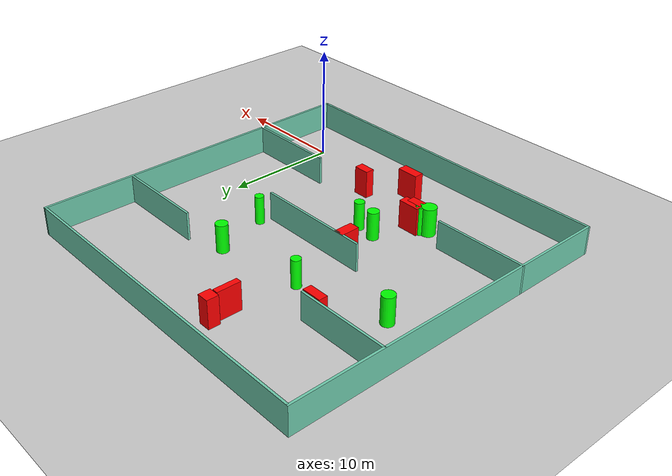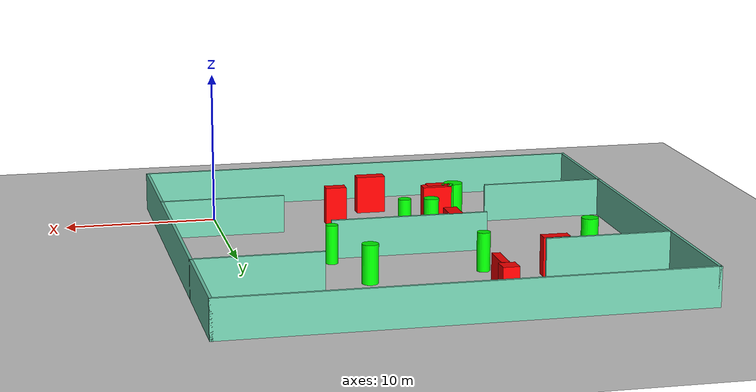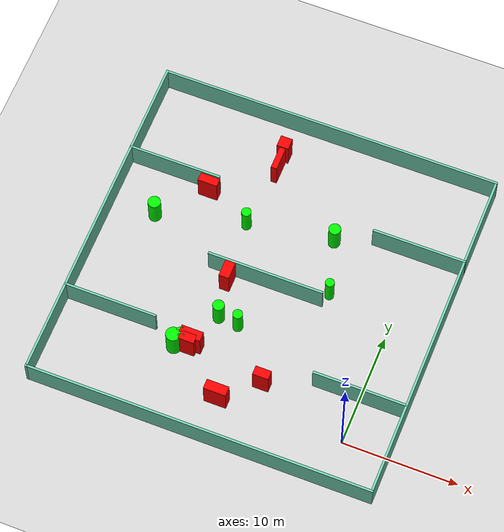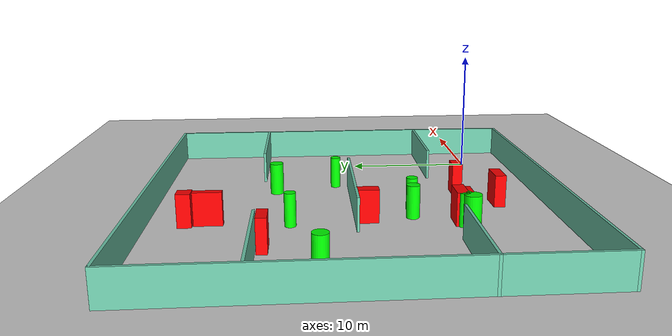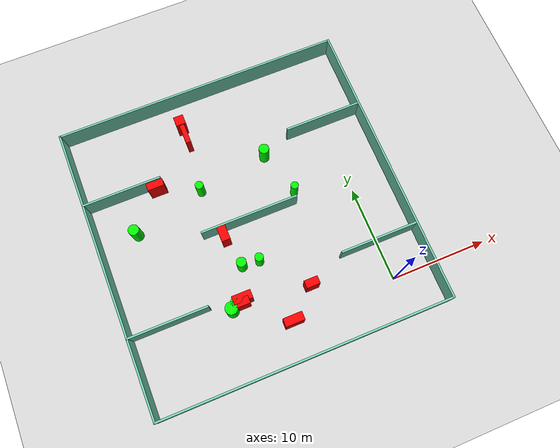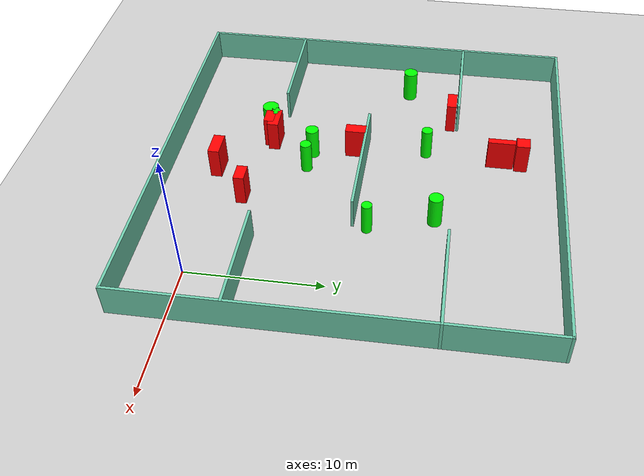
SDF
<sdf version="1.7">
 <world name="default">
  <light name="sun" type="directional">
   <pose>0 0 10 0 -0 0</pose>
   <diffuse>0.8 0.8 0.8 1</diffuse>
   <specular>0.2 0.2 0.2 1</specular>
   <attenuation>
    <range>1000</range>
    <constant>0.9</constant>
    <linear>0.01</linear>
    <quadratic>0.001</quadratic>
   </attenuation>
   <direction>-0.5 0.1 -0.9</direction>
   <spot><inner_angle>0</inner_angle><outer_angle>0</outer_angle><falloff>0</falloff></spot>
  </light>
  <model name="ground_plane">
   <static>1</static>
   <link name="link">
    <collision name="collision">
     <geometry><plane><normal>0 0 1</normal><size>100 100</size></plane></geometry>
     <surface>
      <contact><collide_bitmask>65535</collide_bitmask></contact>
      <friction><ode><mu>100</mu><mu2>50</mu2></ode></friction>
     </surface>
    </collision>
    <visual name="visual">
     <cast_shadows>0</cast_shadows>
     <geometry><plane><normal>0 0 1</normal><size>100 100</size></plane></geometry>
     <material>
      <script><uri>file://media/materials/scripts/gazebo.material</uri><name>Gazebo/Grey</name></script>
     </material>
    </visual>
   </link>
  </model>
  <gravity>0 0 -9.8</gravity>
  <magnetic_field>6e-06 2.3e-05 -4.2e-05</magnetic_field>
  <atmosphere type="adiabatic"/>
  <physics type="ode">
   <max_step_size>0.001</max_step_size>
   <real_time_factor>1</real_time_factor>
   <real_time_update_rate>1000</real_time_update_rate>
  </physics>
  <scene><ambient>0.4 0.4 0.4 1</ambient><background>0.7 0.7 0.7 1</background><shadows>1</shadows></scene>
  <spherical_coordinates>
   <surface_model>EARTH_WGS84</surface_model>
   <latitude_deg>0</latitude_deg>
   <longitude_deg>0</longitude_deg>
   <elevation>0</elevation>
   <heading_deg>0</heading_deg>
  </spherical_coordinates>
  <model name="my_base_walls">
   <link name="Wall_10">
    <collision name="Wall_10_Collision">
     <geometry><box><size>8.2 0.2 2.5</size></box></geometry>
     <pose>0 0 1.25 0 -0 0</pose>
    </collision>
    <visual name="Wall_10_Visual">
     <pose>0 0 1.25 0 -0 0</pose>
     <geometry><box><size>8.2 0.2 2.5</size></box></geometry>
     <material>
      <script><uri>file://media/materials/scripts/gazebo.material</uri><name>Gazebo/Grey</name></script>
      <ambient>0.435294 0.796078 0.67451 1</ambient>
     </material>
     <meta><layer>0</layer></meta>
    </visual>
    <pose>-11 -7 0 0 -0 0</pose>
   </link>
   <link name="Wall_12">
    <collision name="Wall_12_Collision">
     <geometry><box><size>8.2 0.2 2.5</size></box></geometry>
     <pose>0 0 1.25 0 -0 0</pose>
    </collision>
    <visual name="Wall_12_Visual">
     <pose>0 0 1.25 0 -0 0</pose>
     <geometry><box><size>8.2 0.2 2.5</size></box></geometry>
     <material>
      <script><uri>file://media/materials/scripts/gazebo.material</uri><name>Gazebo/Grey</name></script>
      <ambient>0.435294 0.796078 0.67451 1</ambient>
     </material>
     <meta><layer>0</layer></meta>
    </visual>
    <pose>-11 7 0 0 -0 0</pose>
   </link>
   <link name="Wall_14">
    <collision name="Wall_14_Collision">
     <geometry><box><size>8.2 0.2 2.5</size></box></geometry>
     <pose>0 0 1.25 0 -0 0</pose>
    </collision>
    <visual name="Wall_14_Visual">
     <pose>0 0 1.25 0 -0 0</pose>
     <geometry><box><size>8.2 0.2 2.5</size></box></geometry>
     <material>
      <script><uri>file://media/materials/scripts/gazebo.material</uri><name>Gazebo/Grey</name></script>
      <ambient>0.435294 0.796078 0.67451 1</ambient>
     </material>
     <meta><layer>0</layer></meta>
    </visual>
    <pose>11 7 0 0 -0 3.14159</pose>
   </link>
   <link name="Wall_16">
    <collision name="Wall_16_Collision">
     <geometry><box><size>10.2 0.2 2.5</size></box></geometry>
     <pose>0 0 1.25 0 -0 0</pose>
    </collision>
    <visual name="Wall_16_Visual">
     <pose>0 0 1.25 0 -0 0</pose>
     <geometry><box><size>10.2 0.2 2.5</size></box></geometry>
     <material>
      <script><uri>file://media/materials/scripts/gazebo.material</uri><name>Gazebo/Grey</name></script>
      <ambient>0.435294 0.796078 0.67451 1</ambient>
     </material>
     <meta><layer>0</layer></meta>
    </visual>
    <pose>0 0 0 0 -0 3.14159</pose>
   </link>
   <link name="Wall_2">
    <collision name="Wall_2_Collision">
     <geometry><box><size>30.2 0.2 2.5</size></box></geometry>
     <pose>0 0 1.25 0 -0 0</pose>
    </collision>
    <visual name="Wall_2_Visual">
     <pose>0 0 1.25 0 -0 0</pose>
     <geometry><box><size>30.2 0.2 2.5</size></box></geometry>
     <material>
      <script><uri>file://media/materials/scripts/gazebo.material</uri><name>Gazebo/Grey</name></script>
      <ambient>0.435294 0.796078 0.67451 1</ambient>
     </material>
     <meta><layer>0</layer></meta>
    </visual>
    <pose>0 -15 0 0 -0 3.14159</pose>
   </link>
   <link name="Wall_3">
    <collision name="Wall_3_Collision">
     <geometry><box><size>30.2 0.2 2.5</size></box></geometry>
     <pose>0 0 1.25 0 -0 0</pose>
    </collision>
    <visual name="Wall_3_Visual">
     <pose>0 0 1.25 0 -0 0</pose>
     <geometry><box><size>30.2 0.2 2.5</size></box></geometry>
     <material>
      <script><uri>file://media/materials/scripts/gazebo.material</uri><name>Gazebo/Grey</name></script>
      <ambient>0.435294 0.796078 0.67451 1</ambient>
     </material>
     <meta><layer>0</layer></meta>
    </visual>
    <pose>-15 0 0 0 -0 1.5708</pose>
   </link>
   <link name="Wall_4">
    <collision name="Wall_4_Collision">
     <geometry><box><size>30.2 0.2 2.5</size></box></geometry>
     <pose>0 0 1.25 0 -0 0</pose>
    </collision>
    <visual name="Wall_4_Visual">
     <pose>0 0 1.25 0 -0 0</pose>
     <geometry><box><size>30.2 0.2 2.5</size></box></geometry>
     <material>
      <script><uri>file://media/materials/scripts/gazebo.material</uri><name>Gazebo/Grey</name></script>
      <ambient>0.435294 0.796078 0.67451 1</ambient>
     </material>
     <meta><layer>0</layer></meta>
    </visual>
    <pose>0 15 0 0 -0 0</pose>
   </link>
   <link name="Wall_6">
    <collision name="Wall_6_Collision">
     <geometry><box><size>30.2 0.2 2.5</size></box></geometry>
     <pose>0 0 1.25 0 -0 0</pose>
    </collision>
    <visual name="Wall_6_Visual">
     <pose>0 0 1.25 0 -0 0</pose>
     <geometry><box><size>30.2 0.2 2.5</size></box></geometry>
     <material>
      <script><uri>file://media/materials/scripts/gazebo.material</uri><name>Gazebo/Grey</name></script>
      <ambient>0.435294 0.796078 0.67451 1</ambient>
     </material>
     <meta><layer>0</layer></meta>
    </visual>
    <pose>15 0 0 0 -0 1.5708</pose>
   </link>
   <link name="Wall_8">
    <collision name="Wall_8_Collision">
     <geometry><box><size>8.2 0.2 2.5</size></box></geometry>
     <pose>0 0 1.25 0 -0 0</pose>
    </collision>
    <visual name="Wall_8_Visual">
     <pose>0 0 1.25 0 -0 0</pose>
     <geometry><box><size>8.2 0.2 2.5</size></box></geometry>
     <material>
      <script><uri>file://media/materials/scripts/gazebo.material</uri><name>Gazebo/Grey</name></script>
      <ambient>0.435294 0.796078 0.67451 1</ambient>
     </material>
     <meta><layer>0</layer></meta>
    </visual>
    <pose>11 -7 0 0 -0 3.14159</pose>
   </link>
   <static>1</static>
   <pose>-11 11 0 0 -0 0</pose>
  </model>
  <model name="cylinder1">
   <static>1</static>
   <link name="link">
    <inertial>
     <mass>1</mass>
     <inertia><ixx>0.5</ixx><ixy>0</ixy><ixz>0</ixz><iyy>0.5</iyy><iyz>0</iyz><izz>1</izz></inertia>
    </inertial>
    <collision name="collision">
     <geometry><cylinder><radius>0.4995876250240559</radius><length>2.5</length></cylinder></geometry>
    </collision>
    <visual name="visual">
     <geometry><cylinder><radius>0.4995876250240559</radius><length>2.5</length></cylinder></geometry>
     <material>
      <ambient>0 1 0 1</ambient>
      <diffuse>0 1 0 1</diffuse>
      <specular>0.1 0.1 0.1 1</specular>
      <emissive>0 0 0 0</emissive>
     </material>
    </visual>
   </link>
   <pose>-13.493266496699777 6.78294111719973 1.25 0 0 0</pose>
  </model>
  <model name="cylinder2">
   <static>1</static>
   <link name="link">
    <inertial>
     <mass>1</mass>
     <inertia><ixx>0.5</ixx><ixy>0</ixy><ixz>0</ixz><iyy>0.5</iyy><iyz>0</iyz><izz>1</izz></inertia>
    </inertial>
    <collision name="collision">
     <geometry><cylinder><radius>0.4293506868295442</radius><length>2.5</length></cylinder></geometry>
    </collision>
    <visual name="visual">
     <geometry><cylinder><radius>0.4293506868295442</radius><length>2.5</length></cylinder></geometry>
     <material>
      <ambient>0 1 0 1</ambient>
      <diffuse>0 1 0 1</diffuse>
      <specular>0.1 0.1 0.1 1</specular>
      <emissive>0 0 0 0</emissive>
     </material>
    </visual>
   </link>
   <pose>-11.719101931666758 6.599535056287145 1.25 0 0 0</pose>
  </model>
  <model name="cylinder3">
   <static>1</static>
   <link name="link">
    <inertial>
     <mass>1</mass>
     <inertia><ixx>0.5</ixx><ixy>0</ixy><ixz>0</ixz><iyy>0.5</iyy><iyz>0</iyz><izz>1</izz></inertia>
    </inertial>
    <collision name="collision">
     <geometry><cylinder><radius>0.5231094086998714</radius><length>2.5</length></cylinder></geometry>
    </collision>
    <visual name="visual">
     <geometry><cylinder><radius>0.5231094086998714</radius><length>2.5</length></cylinder></geometry>
     <material>
      <ambient>0 1 0 1</ambient>
      <diffuse>0 1 0 1</diffuse>
      <specular>0.1 0.1 0.1 1</specular>
      <emissive>0 0 0 0</emissive>
     </material>
    </visual>
   </link>
   <pose>-7.10096586120477 16.898094585342726 1.25 0 0 0</pose>
  </model>
  <model name="cylinder4">
   <static>1</static>
   <link name="link">
    <inertial>
     <mass>1</mass>
     <inertia><ixx>0.5</ixx><ixy>0</ixy><ixz>0</ixz><iyy>0.5</iyy><iyz>0</iyz><izz>1</izz></inertia>
    </inertial>
    <collision name="collision">
     <geometry><cylinder><radius>0.6348334320946019</radius><length>2.5</length></cylinder></geometry>
    </collision>
    <visual name="visual">
     <geometry><cylinder><radius>0.6348334320946019</radius><length>2.5</length></cylinder></geometry>
     <material>
      <ambient>0 1 0 1</ambient>
      <diffuse>0 1 0 1</diffuse>
      <specular>0.1 0.1 0.1 1</specular>
      <emissive>0 0 0 0</emissive>
     </material>
    </visual>
   </link>
   <pose>-15.965113727314202 2.98462413918274 1.25 0 0 0</pose>
  </model>
  <model name="cylinder5">
   <static>1</static>
   <link name="link">
    <inertial>
     <mass>1</mass>
     <inertia><ixx>0.5</ixx><ixy>0</ixy><ixz>0</ixz><iyy>0.5</iyy><iyz>0</iyz><izz>1</izz></inertia>
    </inertial>
    <collision name="collision">
     <geometry><cylinder><radius>0.42115372108087296</radius><length>2.5</length></cylinder></geometry>
    </collision>
    <visual name="visual">
     <geometry><cylinder><radius>0.42115372108087296</radius><length>2.5</length></cylinder></geometry>
     <material>
      <ambient>0 1 0 1</ambient>
      <diffuse>0 1 0 1</diffuse>
      <specular>0.1 0.1 0.1 1</specular>
      <emissive>0 0 0 0</emissive>
     </material>
    </visual>
   </link>
   <pose>-14.574675183272012 15.706302931540776 1.25 0 0 0</pose>
  </model>
  <model name="cylinder6">
   <static>1</static>
   <link name="link">
    <inertial>
     <mass>1</mass>
     <inertia><ixx>0.5</ixx><ixy>0</ixy><ixz>0</ixz><iyy>0.5</iyy><iyz>0</iyz><izz>1</izz></inertia>
    </inertial>
    <collision name="collision">
     <geometry><cylinder><radius>0.3888698690828165</radius><length>2.5</length></cylinder></geometry>
    </collision>
    <visual name="visual">
     <geometry><cylinder><radius>0.3888698690828165</radius><length>2.5</length></cylinder></geometry>
     <material>
      <ambient>0 1 0 1</ambient>
      <diffuse>0 1 0 1</diffuse>
      <specular>0.1 0.1 0.1 1</specular>
      <emissive>0 0 0 0</emissive>
     </material>
    </visual>
   </link>
   <pose>-5.7050037423555615 12.08410188338889 1.25 0 0 0</pose>
  </model>
  <model name="cylinder7">
   <static>1</static>
   <link name="link">
    <inertial>
     <mass>1</mass>
     <inertia><ixx>0.5</ixx><ixy>0</ixy><ixz>0</ixz><iyy>0.5</iyy><iyz>0</iyz><izz>1</izz></inertia>
    </inertial>
    <collision name="collision">
     <geometry><cylinder><radius>0.4220899138693053</radius><length>2.5</length></cylinder></geometry>
    </collision>
    <visual name="visual">
     <geometry><cylinder><radius>0.4220899138693053</radius><length>2.5</length></cylinder></geometry>
     <material>
      <ambient>0 1 0 1</ambient>
      <diffuse>0 1 0 1</diffuse>
      <specular>0.1 0.1 0.1 1</specular>
      <emissive>0 0 0 0</emissive>
     </material>
    </visual>
   </link>
   <pose>-15.458403499443264 3.4315496709386073 1.25 0 0 0</pose>
  </model>
  <model name="cylinder8">
   <static>1</static>
   <link name="link">
    <inertial>
     <mass>1</mass>
     <inertia><ixx>0.5</ixx><ixy>0</ixy><ixz>0</ixz><iyy>0.5</iyy><iyz>0</iyz><izz>1</izz></inertia>
    </inertial>
    <collision name="collision">
     <geometry><cylinder><radius>0.550957646537148</radius><length>2.5</length></cylinder></geometry>
    </collision>
    <visual name="visual">
     <geometry><cylinder><radius>0.550957646537148</radius><length>2.5</length></cylinder></geometry>
     <material>
      <ambient>0 1 0 1</ambient>
      <diffuse>0 1 0 1</diffuse>
      <specular>0.1 0.1 0.1 1</specular>
      <emissive>0 0 0 0</emissive>
     </material>
    </visual>
   </link>
   <pose>-22.12047301026533 13.757376812492904 1.25 0 0 0</pose>
  </model>
  <model name="box1">
   <static>1</static>
   <link name="link">
    <inertial>
     <mass>1</mass>
     <inertia><ixx>0.083</ixx><ixy>0</ixy><ixz>0</ixz><iyy>0.083</iyy><iyz>0</iyz><izz>0.083</izz></inertia>
    </inertial>
    <collision name="collision">
     <geometry><box><size>0.5189007296402455 2.0861090018454864 2.5</size></box></geometry>
    </collision>
    <visual name="visual">
     <geometry><box><size>0.5189007296402455 2.0861090018454864 2.5</size></box></geometry>
     <material>
      <ambient>1 0 0 1</ambient>
      <diffuse>1 0 0 1</diffuse>
      <specular>0.1 0.1 0.1 1</specular>
      <emissive>0 0 0 0</emissive>
     </material>
    </visual>
    <sensor name="my_contact" type="contact">
     <contact><collision>box_collision</collision><topic>__default_topic__</topic></contact>
    </sensor>
   </link>
   <pose>-13.975521129878079 21.50638381744721 1.25 0 0 0</pose>
  </model>
  <model name="box2">
   <static>1</static>
   <link name="link">
    <inertial>
     <mass>1</mass>
     <inertia><ixx>0.083</ixx><ixy>0</ixy><ixz>0</ixz><iyy>0.083</iyy><iyz>0</iyz><izz>0.083</izz></inertia>
    </inertial>
    <collision name="collision">
     <geometry><box><size>1.3837598074307433 0.7971257871480306 2.5</size></box></geometry>
    </collision>
    <visual name="visual">
     <geometry><box><size>1.3837598074307433 0.7971257871480306 2.5</size></box></geometry>
     <material>
      <ambient>1 0 0 1</ambient>
      <diffuse>1 0 0 1</diffuse>
      <specular>0.1 0.1 0.1 1</specular>
      <emissive>0 0 0 0</emissive>
     </material>
    </visual>
    <sensor name="my_contact" type="contact">
     <contact><collision>box_collision</collision><topic>__default_topic__</topic></contact>
    </sensor>
   </link>
   <pose>-7.915214833859151 2.4076328969716148 1.25 0 0 0</pose>
  </model>
  <model name="box3">
   <static>1</static>
   <link name="link">
    <inertial>
     <mass>1</mass>
     <inertia><ixx>0.083</ixx><ixy>0</ixy><ixz>0</ixz><iyy>0.083</iyy><iyz>0</iyz><izz>0.083</izz></inertia>
    </inertial>
    <collision name="collision">
     <geometry><box><size>1.718933020140351 0.7558650678564589 2.5</size></box></geometry>
    </collision>
    <visual name="visual">
     <geometry><box><size>1.718933020140351 0.7558650678564589 2.5</size></box></geometry>
     <material>
      <ambient>1 0 0 1</ambient>
      <diffuse>1 0 0 1</diffuse>
      <specular>0.1 0.1 0.1 1</specular>
      <emissive>0 0 0 0</emissive>
     </material>
    </visual>
    <sensor name="my_contact" type="contact">
     <contact><collision>box_collision</collision><topic>__default_topic__</topic></contact>
    </sensor>
   </link>
   <pose>-18.660439678144286 17.43354317849938 1.25 0 0 0</pose>
  </model>
  <model name="box4">
   <static>1</static>
   <link name="link">
    <inertial>
     <mass>1</mass>
     <inertia><ixx>0.083</ixx><ixy>0</ixy><ixz>0</ixz><iyy>0.083</iyy><iyz>0</iyz><izz>0.083</izz></inertia>
    </inertial>
    <collision name="collision">
     <geometry><box><size>1.029308158793632 1.0249019217645547 2.5</size></box></geometry>
    </collision>
    <visual name="visual">
     <geometry><box><size>1.029308158793632 1.0249019217645547 2.5</size></box></geometry>
     <material>
      <ambient>1 0 0 1</ambient>
      <diffuse>1 0 0 1</diffuse>
      <specular>0.1 0.1 0.1 1</specular>
      <emissive>0 0 0 0</emissive>
     </material>
    </visual>
    <sensor name="my_contact" type="contact">
     <contact><collision>box_collision</collision><topic>__default_topic__</topic></contact>
    </sensor>
   </link>
   <pose>-14.023219355674035 23.126966328022615 1.25 0 0 0</pose>
  </model>
  <model name="box5">
   <static>1</static>
   <link name="link">
    <inertial>
     <mass>1</mass>
     <inertia><ixx>0.083</ixx><ixy>0</ixy><ixz>0</ixz><iyy>0.083</iyy><iyz>0</iyz><izz>0.083</izz></inertia>
    </inertial>
    <collision name="collision">
     <geometry><box><size>0.8926663152455392 1.6753062682207327 2.5</size></box></geometry>
    </collision>
    <visual name="visual">
     <geometry><box><size>0.8926663152455392 1.6753062682207327 2.5</size></box></geometry>
     <material>
      <ambient>1 0 0 1</ambient>
      <diffuse>1 0 0 1</diffuse>
      <specular>0.1 0.1 0.1 1</specular>
      <emissive>0 0 0 0</emissive>
     </material>
    </visual>
    <sensor name="my_contact" type="contact">
     <contact><collision>box_collision</collision><topic>__default_topic__</topic></contact>
    </sensor>
   </link>
   <pose>-14.069531291340045 10.204472509756119 1.25 0 0 0</pose>
  </model>
  <model name="box6">
   <static>1</static>
   <link name="link">
    <inertial>
     <mass>1</mass>
     <inertia><ixx>0.083</ixx><ixy>0</ixy><ixz>0</ixz><iyy>0.083</iyy><iyz>0</iyz><izz>0.083</izz></inertia>
    </inertial>
    <collision name="collision">
     <geometry><box><size>1.946599976205495 0.8590536795658134 2.5</size></box></geometry>
    </collision>
    <visual name="visual">
     <geometry><box><size>1.946599976205495 0.8590536795658134 2.5</size></box></geometry>
     <material>
      <ambient>1 0 0 1</ambient>
      <diffuse>1 0 0 1</diffuse>
      <specular>0.1 0.1 0.1 1</specular>
      <emissive>0 0 0 0</emissive>
     </material>
    </visual>
    <sensor name="my_contact" type="contact">
     <contact><collision>box_collision</collision><topic>__default_topic__</topic></contact>
    </sensor>
   </link>
   <pose>-10.876019865494182 -0.18201113932798796 1.25 0 0 0</pose>
  </model>
  <model name="box7">
   <static>1</static>
   <link name="link">
    <inertial>
     <mass>1</mass>
     <inertia><ixx>0.083</ixx><ixy>0</ixy><ixz>0</ixz><iyy>0.083</iyy><iyz>0</iyz><izz>0.083</izz></inertia>
    </inertial>
    <collision name="collision">
     <geometry><box><size>1.3724503171070799 0.7784982254962285 2.5</size></box></geometry>
    </collision>
    <visual name="visual">
     <geometry><box><size>1.3724503171070799 0.7784982254962285 2.5</size></box></geometry>
     <material>
      <ambient>1 0 0 1</ambient>
      <diffuse>1 0 0 1</diffuse>
      <specular>0.1 0.1 0.1 1</specular>
      <emissive>0 0 0 0</emissive>
     </material>
    </visual>
    <sensor name="my_contact" type="contact">
     <contact><collision>box_collision</collision><topic>__default_topic__</topic></contact>
    </sensor>
   </link>
   <pose>-14.770032864654738 3.1787644051568336 1.25 0 0 0</pose>
  </model>
  <model name="box8">
   <static>1</static>
   <link name="link">
    <inertial>
     <mass>1</mass>
     <inertia><ixx>0.083</ixx><ixy>0</ixy><ixz>0</ixz><iyy>0.083</iyy><iyz>0</iyz><izz>0.083</izz></inertia>
    </inertial>
    <collision name="collision">
     <geometry><box><size>1.920078465138886 0.8652848252933153 2.5</size></box></geometry>
    </collision>
    <visual name="visual">
     <geometry><box><size>1.920078465138886 0.8652848252933153 2.5</size></box></geometry>
     <material>
      <ambient>1 0 0 1</ambient>
      <diffuse>1 0 0 1</diffuse>
      <specular>0.1 0.1 0.1 1</specular>
      <emissive>0 0 0 0</emissive>
     </material>
    </visual>
    <sensor name="my_contact" type="contact">
     <contact><collision>box_collision</collision><topic>__default_topic__</topic></contact>
    </sensor>
   </link>
   <pose>-14.636014221147093 3.5872756814623497 1.25 0 0 0</pose>
  </model>
 </world>
</sdf>
